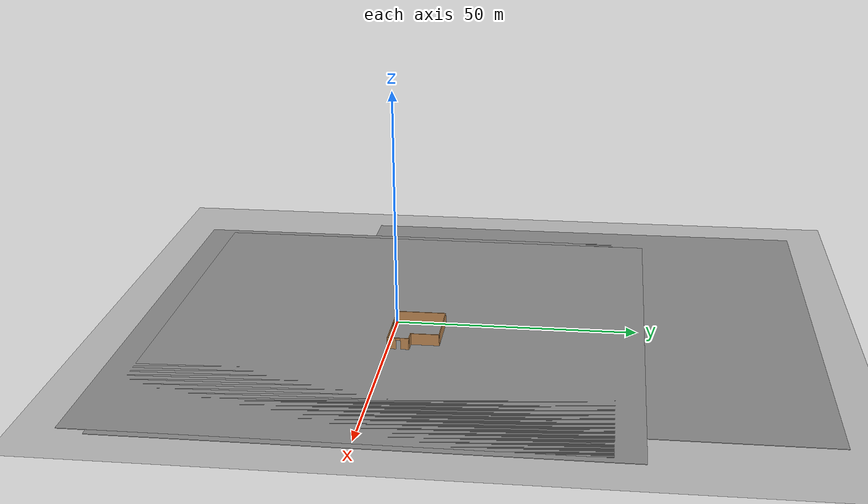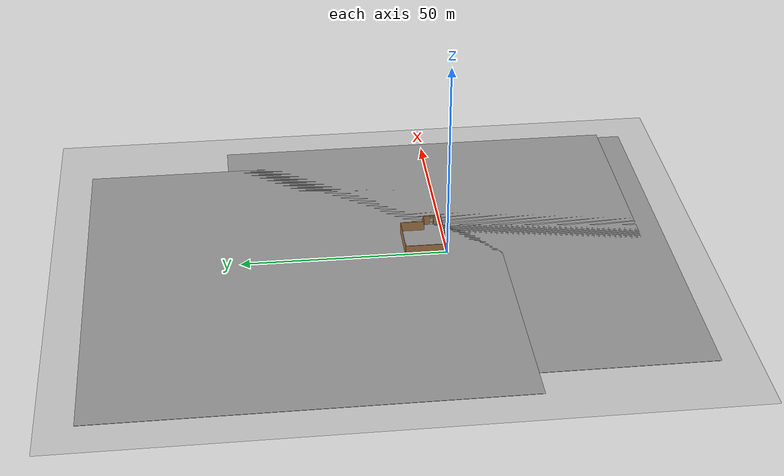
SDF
<sdf version="1.6">
 <world name="default">
  <light name="sun" type="directional">
   <pose>0 0 10 0 -0 0</pose>
   <diffuse>0.8 0.8 0.8 1</diffuse>
   <specular>0.2 0.2 0.2 1</specular>
   <attenuation>
    <range>1000</range>
    <constant>0.9</constant>
    <linear>0.01</linear>
    <quadratic>0.001</quadratic>
   </attenuation>
   <direction>-0.5 0.1 -0.9</direction>
  </light>
  <model name="ground_plane">
   <static>1</static>
   <link name="link">
    <collision name="collision">
     <geometry><plane><normal>0 0 1</normal><size>100 100</size></plane></geometry>
     <surface>
      <contact><collide_bitmask>65535</collide_bitmask></contact>
      <friction><ode><mu>100</mu><mu2>50</mu2></ode></friction>
     </surface>
    </collision>
    <visual name="visual">
     <cast_shadows>0</cast_shadows>
     <geometry><plane><normal>0 0 1</normal><size>100 100</size></plane></geometry>
     <material>
      <script><uri>file://media/materials/scripts/gazebo.material</uri><name>Gazebo/Grey</name></script>
     </material>
    </visual>
   </link>
  </model>
  <gravity>0 0 -9.8</gravity>
  <magnetic_field>6e-06 2.3e-05 -4.2e-05</magnetic_field>
  <atmosphere type="adiabatic"/>
  <physics name="default_physics" default="0" type="ode">
   <max_step_size>0.001</max_step_size>
   <real_time_factor>1</real_time_factor>
   <real_time_update_rate>1000</real_time_update_rate>
  </physics>
  <scene><ambient>0.4 0.4 0.4 1</ambient><background>0.7 0.7 0.7 1</background><shadows>1</shadows></scene>
  <audio><device>default</device></audio>
  <spherical_coordinates>
   <surface_model>EARTH_WGS84</surface_model>
   <latitude_deg>0</latitude_deg>
   <longitude_deg>0</longitude_deg>
   <elevation>0</elevation>
   <heading_deg>0</heading_deg>
  </spherical_coordinates>
  <model name="room">
   <pose>6.425 5.1 0 0 -0 0</pose>
   <link name="Wall_24">
    <pose>0 -5.1 0 0 -0 0</pose>
    <visual name="Wall_24_Visual_0">
     <pose>-3.9714 0 1.25 0 -0 0</pose>
     <geometry><box><size>5.0572 0.15 2.5</size></box></geometry>
     <material>
      <script><uri>file://media/materials/scripts/gazebo.material</uri><name>Gazebo/Wood</name></script>
      <ambient>1 1 1 1</ambient>
     </material>
     <meta><layer>0</layer></meta>
    </visual>
    <collision name="Wall_24_Collision_0">
     <geometry><box><size>5.0572 0.15 2.5</size></box></geometry>
     <pose>-3.9714 0 1.25 0 -0 0</pose>
    </collision>
    <visual name="Wall_24_Visual_1">
     <pose>2.5286 0 0.25 0 -0 0</pose>
     <geometry><box><size>7.9428 0.15 0.5</size></box></geometry>
     <material>
      <script><uri>file://media/materials/scripts/gazebo.material</uri><name>Gazebo/Wood</name></script>
      <ambient>1 1 1 1</ambient>
     </material>
     <meta><layer>0</layer></meta>
    </visual>
    <collision name="Wall_24_Collision_1">
     <geometry><box><size>7.9428 0.15 0.5</size></box></geometry>
     <pose>2.5286 0 0.25 0 -0 0</pose>
    </collision>
    <visual name="Wall_24_Visual_2">
     <pose>-0.155329 0 1.5 0 -0 0</pose>
     <geometry><box><size>0.97494 0.15 2</size></box></geometry>
     <material>
      <script><uri>file://media/materials/scripts/gazebo.material</uri><name>Gazebo/Wood</name></script>
      <ambient>1 1 1 1</ambient>
     </material>
     <meta><layer>0</layer></meta>
    </visual>
    <collision name="Wall_24_Collision_2">
     <geometry><box><size>0.97494 0.15 2</size></box></geometry>
     <pose>-0.155329 0 1.5 0 -0 0</pose>
    </collision>
    <visual name="Wall_24_Visual_3">
     <pose>3.81607 0 1.5 0 -0 0</pose>
     <geometry><box><size>5.36786 0.15 2</size></box></geometry>
     <material>
      <script><uri>file://media/materials/scripts/gazebo.material</uri><name>Gazebo/Wood</name></script>
      <ambient>1 1 1 1</ambient>
     </material>
     <meta><layer>0</layer></meta>
    </visual>
    <collision name="Wall_24_Collision_3">
     <geometry><box><size>5.36786 0.15 2</size></box></geometry>
     <pose>3.81607 0 1.5 0 -0 0</pose>
    </collision>
    <visual name="Wall_24_Visual_4">
     <pose>-1.0428 0 1.9 0 -0 0</pose>
     <geometry><box><size>0.8 0.15 1.2</size></box></geometry>
     <material>
      <script><uri>file://media/materials/scripts/gazebo.material</uri><name>Gazebo/Wood</name></script>
      <ambient>1 1 1 1</ambient>
     </material>
     <meta><layer>0</layer></meta>
    </visual>
    <collision name="Wall_24_Collision_4">
     <geometry><box><size>0.8 0.15 1.2</size></box></geometry>
     <pose>-1.0428 0 1.9 0 -0 0</pose>
    </collision>
    <visual name="Wall_24_Visual_5">
     <pose>0.732141 0 1.9 0 -0 0</pose>
     <geometry><box><size>0.8 0.15 1.2</size></box></geometry>
     <material>
      <script><uri>file://media/materials/scripts/gazebo.material</uri><name>Gazebo/Wood</name></script>
      <ambient>1 1 1 1</ambient>
     </material>
     <meta><layer>0</layer></meta>
    </visual>
    <collision name="Wall_24_Collision_5">
     <geometry><box><size>0.8 0.15 1.2</size></box></geometry>
     <pose>0.732141 0 1.9 0 -0 0</pose>
    </collision>
   </link>
   <link name="Wall_25">
    <pose>6.425 -2.925 0 0 -0 1.5708</pose>
    <visual name="Wall_25_Visual_0">
     <pose>-1.34144 0 1.25 0 -0 0</pose>
     <geometry><box><size>1.81712 0.15 2.5</size></box></geometry>
     <material>
      <script><uri>file://media/materials/scripts/gazebo.material</uri><name>Gazebo/Wood</name></script>
      <ambient>1 1 1 1</ambient>
     </material>
     <meta><layer>0</layer></meta>
    </visual>
    <collision name="Wall_25_Collision_0">
     <geometry><box><size>1.81712 0.15 2.5</size></box></geometry>
     <pose>-1.34144 0 1.25 0 -0 0</pose>
    </collision>
    <visual name="Wall_25_Visual_1">
     <pose>1.35856 0 1.25 0 -0 0</pose>
     <geometry><box><size>1.78288 0.15 2.5</size></box></geometry>
     <material>
      <script><uri>file://media/materials/scripts/gazebo.material</uri><name>Gazebo/Wood</name></script>
      <ambient>1 1 1 1</ambient>
     </material>
     <meta><layer>0</layer></meta>
    </visual>
    <collision name="Wall_25_Collision_1">
     <geometry><box><size>1.78288 0.15 2.5</size></box></geometry>
     <pose>1.35856 0 1.25 0 -0 0</pose>
    </collision>
    <visual name="Wall_25_Visual_2">
     <pose>0.017118 0 2.25 0 -0 0</pose>
     <geometry><box><size>0.9 0.15 0.5</size></box></geometry>
     <material>
      <script><uri>file://media/materials/scripts/gazebo.material</uri><name>Gazebo/Wood</name></script>
      <ambient>1 1 1 1</ambient>
     </material>
     <meta><layer>0</layer></meta>
    </visual>
    <collision name="Wall_25_Collision_2">
     <geometry><box><size>0.9 0.15 0.5</size></box></geometry>
     <pose>0.017118 0 2.25 0 -0 0</pose>
    </collision>
   </link>
   <link name="Wall_26">
    <collision name="Wall_26_Collision">
     <geometry><box><size>2.5 0.15 2.5</size></box></geometry>
     <pose>0 0 1.25 0 -0 0</pose>
    </collision>
    <visual name="Wall_26_Visual">
     <pose>0 0 1.25 0 -0 0</pose>
     <geometry><box><size>2.5 0.15 2.5</size></box></geometry>
     <material>
      <script><uri>file://media/materials/scripts/gazebo.material</uri><name>Gazebo/Wood</name></script>
      <ambient>1 1 1 1</ambient>
     </material>
     <meta><layer>0</layer></meta>
    </visual>
    <pose>5.25 -0.75 0 0 -0 3.14159</pose>
   </link>
   <link name="Wall_27">
    <collision name="Wall_27_Collision">
     <geometry><box><size>6 0.15 2.5</size></box></geometry>
     <pose>0 0 1.25 0 -0 0</pose>
    </collision>
    <visual name="Wall_27_Visual">
     <pose>0 0 1.25 0 -0 0</pose>
     <geometry><box><size>6 0.15 2.5</size></box></geometry>
     <material>
      <script><uri>file://media/materials/scripts/gazebo.material</uri><name>Gazebo/Wood</name></script>
      <ambient>1 1 1 1</ambient>
     </material>
     <meta><layer>0</layer></meta>
    </visual>
    <pose>4.075 2.175 0 0 -0 1.5708</pose>
   </link>
   <link name="Wall_28">
    <collision name="Wall_28_Collision">
     <geometry><box><size>10.65 0.15 2.5</size></box></geometry>
     <pose>0 0 1.25 0 -0 0</pose>
    </collision>
    <visual name="Wall_28_Visual">
     <pose>0 0 1.25 0 -0 0</pose>
     <geometry><box><size>10.65 0.15 2.5</size></box></geometry>
     <material>
      <script><uri>file://media/materials/scripts/gazebo.material</uri><name>Gazebo/Wood</name></script>
      <ambient>1 1 1 1</ambient>
     </material>
     <meta><layer>0</layer></meta>
    </visual>
    <pose>-1.175 5.1 0 0 -0 3.14159</pose>
   </link>
   <link name="Wall_29">
    <collision name="Wall_29_Collision">
     <geometry><box><size>10.35 0.15 2.5</size></box></geometry>
     <pose>0 0 1.25 0 -0 0</pose>
    </collision>
    <visual name="Wall_29_Visual">
     <pose>0 0 1.25 0 -0 0</pose>
     <geometry><box><size>10.35 0.15 2.5</size></box></geometry>
     <material>
      <script><uri>file://media/materials/scripts/gazebo.material</uri><name>Gazebo/Wood</name></script>
      <ambient>1 1 1 1</ambient>
     </material>
     <meta><layer>0</layer></meta>
    </visual>
    <pose>-6.425 0 0 0 -0 -1.5708</pose>
   </link>
   <static>1</static>
  </model>
  <model name="ground_plane_0">
   <static>1</static>
   <link name="link">
    <collision name="collision">
     <geometry><plane><normal>0 0 1</normal><size>100 100</size></plane></geometry>
     <surface>
      <contact><collide_bitmask>65535</collide_bitmask></contact>
      <friction><ode><mu>100</mu><mu2>50</mu2></ode></friction>
     </surface>
    </collision>
    <visual name="visual">
     <cast_shadows>0</cast_shadows>
     <geometry><plane><normal>0 0 1</normal><size>100 100</size></plane></geometry>
     <material>
      <script><uri>file://media/materials/scripts/gazebo.material</uri><name>Gazebo/Grey</name></script>
     </material>
    </visual>
   </link>
   <pose>0.983926 -4.03646 0 0 -0 0</pose>
  </model>
  <model name="ground_plane_1">
   <static>1</static>
   <link name="link">
    <collision name="collision">
     <geometry><plane><normal>0 0 1</normal><size>100 100</size></plane></geometry>
     <surface>
      <contact><collide_bitmask>65535</collide_bitmask></contact>
      <friction><ode><mu>100</mu><mu2>50</mu2></ode></friction>
     </surface>
    </collision>
    <visual name="visual">
     <cast_shadows>0</cast_shadows>
     <geometry><plane><normal>0 0 1</normal><size>100 100</size></plane></geometry>
     <material>
      <script><uri>file://media/materials/scripts/gazebo.material</uri><name>Gazebo/Grey</name></script>
     </material>
    </visual>
   </link>
   <pose>2.49976 1.63943 0 0 -0 0</pose>
  </model>
  <model name="ground_plane_2">
   <static>1</static>
   <link name="link">
    <collision name="collision">
     <geometry><plane><normal>0 0 1</normal><size>100 100</size></plane></geometry>
     <surface>
      <contact><collide_bitmask>65535</collide_bitmask></contact>
      <friction><ode><mu>100</mu><mu2>50</mu2></ode></friction>
     </surface>
    </collision>
    <visual name="visual">
     <cast_shadows>0</cast_shadows>
     <geometry><plane><normal>0 0 1</normal><size>100 100</size></plane></geometry>
     <material>
      <script><uri>file://media/materials/scripts/gazebo.material</uri><name>Gazebo/Grey</name></script>
     </material>
    </visual>
   </link>
   <pose>-6.21 36.7844 0 0 -0 0</pose>
  </model>
  <model name="bookshelf">
   <static>1</static>
   <link name="link">
    <inertial><mass>1</mass></inertial>
    <collision name="back">
     <pose>0 0.005 0.6 0 -0 0</pose>
     <geometry><box><size>0.9 0.01 1.2</size></box></geometry>
    </collision>
    <visual name="visual1">
     <pose>0 0.005 0.6 0 -0 0</pose>
     <geometry><box><size>0.9 0.01 1.2</size></box></geometry>
     <material>
      <script><uri>file://media/materials/scripts/gazebo.material</uri><name>Gazebo/Wood</name></script>
     </material>
    </visual>
    <collision name="left_side">
     <pose>0.45 -0.195 0.6 0 -0 0</pose>
     <geometry><box><size>0.02 0.4 1.2</size></box></geometry>
    </collision>
    <visual name="visual2">
     <pose>0.45 -0.195 0.6 0 -0 0</pose>
     <geometry><box><size>0.02 0.4 1.2</size></box></geometry>
     <material>
      <script><uri>file://media/materials/scripts/gazebo.material</uri><name>Gazebo/Wood</name></script>
     </material>
    </visual>
    <collision name="right_side">
     <pose>-0.45 -0.195 0.6 0 -0 0</pose>
     <geometry><box><size>0.02 0.4 1.2</size></box></geometry>
    </collision>
    <visual name="visual3">
     <pose>-0.45 -0.195 0.6 0 -0 0</pose>
     <geometry><box><size>0.02 0.4 1.2</size></box></geometry>
     <material>
      <script><uri>file://media/materials/scripts/gazebo.material</uri><name>Gazebo/Wood</name></script>
     </material>
    </visual>
    <collision name="bottom">
     <pose>0 -0.195 0.03 0 -0 0</pose>
     <geometry><box><size>0.88 0.4 0.06</size></box></geometry>
    </collision>
    <visual name="visual4">
     <pose>0 -0.195 0.03 0 -0 0</pose>
     <geometry><box><size>0.88 0.4 0.06</size></box></geometry>
     <material>
      <script><uri>file://media/materials/scripts/gazebo.material</uri><name>Gazebo/Wood</name></script>
     </material>
    </visual>
    <collision name="top">
     <pose>0 -0.195 1.19 0 -0 0</pose>
     <geometry><box><size>0.88 0.4 0.02</size></box></geometry>
    </collision>
    <visual name="visual5">
     <pose>0 -0.195 1.19 0 -0 0</pose>
     <geometry><box><size>0.88 0.4 0.02</size></box></geometry>
     <material>
      <script><uri>file://media/materials/scripts/gazebo.material</uri><name>Gazebo/Wood</name></script>
     </material>
    </visual>
    <collision name="low_shelf">
     <pose>0 -0.195 0.43 0 -0 0</pose>
     <geometry><box><size>0.88 0.4 0.02</size></box></geometry>
    </collision>
    <visual name="visual6">
     <pose>0 -0.195 0.43 0 -0 0</pose>
     <geometry><box><size>0.88 0.4 0.02</size></box></geometry>
     <material>
      <script><uri>file://media/materials/scripts/gazebo.material</uri><name>Gazebo/Wood</name></script>
     </material>
    </visual>
    <collision name="high_shelf">
     <pose>0 -0.195 0.8 0 -0 0</pose>
     <geometry><box><size>0.88 0.4 0.02</size></box></geometry>
    </collision>
    <visual name="visual7">
     <pose>0 -0.195 0.8 0 -0 0</pose>
     <geometry><box><size>0.88 0.4 0.02</size></box></geometry>
     <material>
      <script><uri>file://media/materials/scripts/gazebo.material</uri><name>Gazebo/Wood</name></script>
     </material>
    </visual>
   </link>
   <pose>2.41939 10.0906 0 0 -0 0</pose>
  </model>
  <model name="beer">
   <link name="link">
    <pose>0 0 0.115 0 -0 0</pose>
    <inertial>
     <mass>0.39</mass>
     <inertia><ixx>0.00058</ixx><ixy>0</ixy><ixz>0</ixz><iyy>0.00058</iyy><iyz>0</iyz><izz>0.00019</izz></inertia>
    </inertial>
    <collision name="collision">
     <geometry><cylinder><radius>0.055</radius><length>0.23</length></cylinder></geometry>
    </collision>
    <visual name="visual">
     <geometry><cylinder><radius>0.055</radius><length>0.23</length></cylinder></geometry>
     <material>
      <script>
       <uri>model://beer/materials/scripts</uri>
       <uri>model://beer/materials/textures</uri>
       <name>Beer/Diffuse</name>
      </script>
     </material>
    </visual>
   </link>
   <pose>0.216806 1.81835 0 0 -0 0</pose>
  </model>
 </world>
</sdf>
